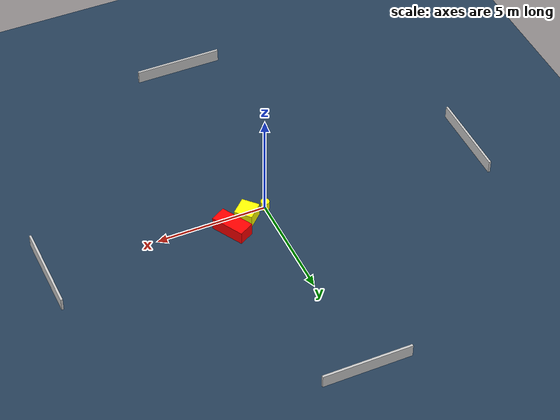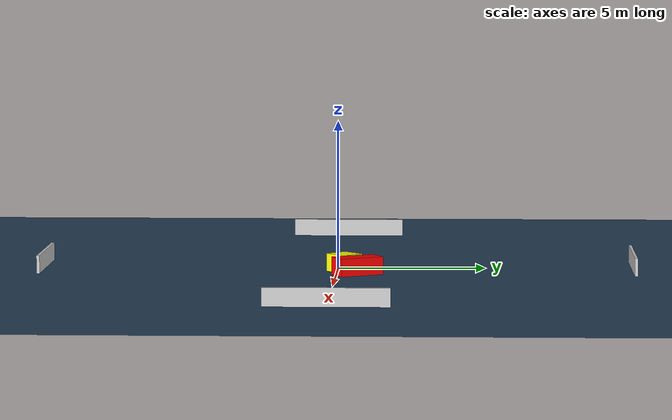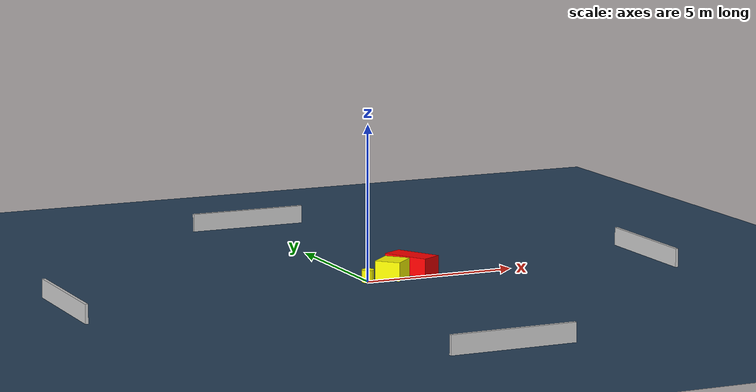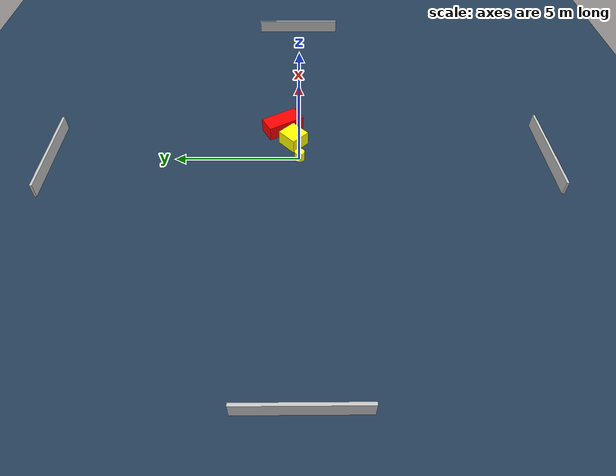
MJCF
<?xml version="1.0" ?>
<mujoco model="generated_environment">
  <option timestep="0.01" integrator="RK4" cone="elliptic"/>
  <default>
    <geom density="1"/>
  </default>
  <asset>
    <texture builtin="gradient" height="3072" name="skybox" rgb1="0.3 0.5 0.7" rgb2="0 0 0" type="skybox" width="512"/>
    <texture builtin="checker" height="300" name="groundplane" rgb1="0.2 0.3 0.4" rgb2="0.1 0.2 0.3" type="2d" width="300"/>
    <material name="groundplane" reflectance="0.2" texrepeat="5 5" texture="groundplane"/>
  </asset>
  <worldbody>
    <light dir="0 0 -1" directional="true" pos="0 0 1.5"/>
    <geom condim="3" friction="0.5 0.005 0.001" material="groundplane" name="floor" pos="0 0 0" size="0 0 0.05" type="plane"/>
    <body name="walls">
      <geom name="wall_1" condim="4" pos="-10.0 0.0 0.3" rgba="0.800000011920929 0.800000011920929 0.800000011920929 1.0" size="0.05 2.0 0.3" type="box"/>
      <geom name="wall_2" condim="4" pos="10.0 0.0 0.3" rgba="0.800000011920929 0.800000011920929 0.800000011920929 1.0" size="0.05 2.0 0.3" type="box"/>
      <geom name="wall_3" condim="4" pos="0.0 -10.0 0.3" rgba="0.800000011920929 0.800000011920929 0.800000011920929 1.0" size="2.0 0.05 0.3" type="box"/>
      <geom name="wall_4" condim="4" pos="0.0 10.0 0.3" rgba="0.800000011920929 0.800000011920929 0.800000011920929 1.0" size="2.0 0.05 0.3" type="box"/>
    </body>
    <body name="robot">
      <joint name="joint_x" type="slide" pos="0 0 0" axis="1 0 0"/>
      <joint name="joint_y" type="slide" pos="0 0 0" axis="0 1 0"/>
      <geom name="robot" type="cylinder" pos="0.0 0.0 0.2" size="0.2 0.2 0.0" mass="5.0" friction="1.0 0.005 0.0001" condim="4" rgba="1.0 1.0 0.0 1.0"/>
    </body>
    <body name="obstacle_1_movable">
      <geom name="obstacle_1_movable" condim="4" pos="0.9605147078960907 0.24496281979028167 0.3" euler="0 0 43.215242303043766" friction="0.0 0.005 0.001" rgba="1.0 1.0 0.0 1.0" size="0.43677620526874866 0.41248706376142835 0.3" type="box" mass="0.1"/>
      <joint type="free"/>
    </body>
    <body name="obstacle_2_static">
      <geom name="obstacle_2_static" condim="4" pos="1.8516928792019778 0.7086482651873292 0.3" euler="0 0 29.32346091331581" friction="0.0 0.005 0.001" rgba="1.0 0.0 0.0 1.0" size="0.3712670807311975 0.7819705832386965 0.3" type="box"/>
    </body>
  </worldbody>
  <actuator>
    <motor name="actuator_x" joint="joint_x" gear="1" ctrlrange="-1 1"/>
    <motor name="actuator_y" joint="joint_y" gear="1" ctrlrange="-1 1"/>
  </actuator>
</mujoco>
